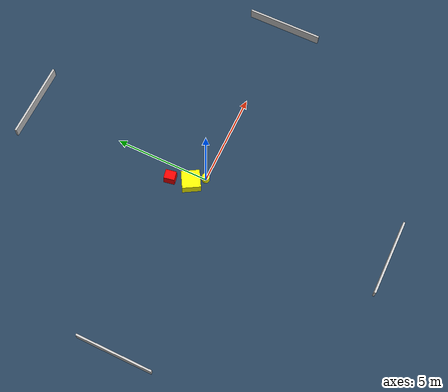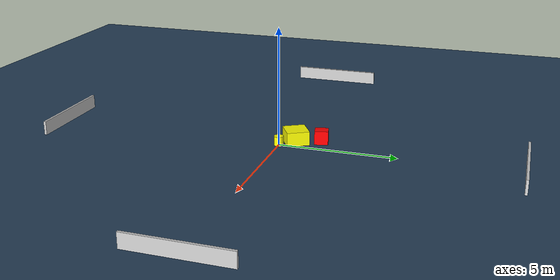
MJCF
<?xml version="1.0" ?>
<mujoco model="generated_environment">
  <option timestep="0.01" integrator="RK4" cone="elliptic"/>
  <default>
    <geom density="1"/>
  </default>
  <asset>
    <texture builtin="gradient" height="3072" name="skybox" rgb1="0.3 0.5 0.7" rgb2="0 0 0" type="skybox" width="512"/>
    <texture builtin="checker" height="300" name="groundplane" rgb1="0.2 0.3 0.4" rgb2="0.1 0.2 0.3" type="2d" width="300"/>
    <material name="groundplane" reflectance="0.2" texrepeat="5 5" texture="groundplane"/>
  </asset>
  <worldbody>
    <light dir="0 0 -1" directional="true" pos="0 0 1.5"/>
    <geom condim="3" friction="0.5 0.005 0.001" material="groundplane" name="floor" pos="0 0 0" size="0 0 0.05" type="plane"/>
    <body name="walls">
      <geom name="wall_1" condim="4" pos="-10.0 0.0 0.3" rgba="0.800000011920929 0.800000011920929 0.800000011920929 1.0" size="0.05 2.0 0.3" type="box"/>
      <geom name="wall_2" condim="4" pos="10.0 0.0 0.3" rgba="0.800000011920929 0.800000011920929 0.800000011920929 1.0" size="0.05 2.0 0.3" type="box"/>
      <geom name="wall_3" condim="4" pos="0.0 -10.0 0.3" rgba="0.800000011920929 0.800000011920929 0.800000011920929 1.0" size="2.0 0.05 0.3" type="box"/>
      <geom name="wall_4" condim="4" pos="0.0 10.0 0.3" rgba="0.800000011920929 0.800000011920929 0.800000011920929 1.0" size="2.0 0.05 0.3" type="box"/>
    </body>
    <body name="robot">
      <joint name="joint_x" type="slide" pos="0 0 0" axis="1 0 0"/>
      <joint name="joint_y" type="slide" pos="0 0 0" axis="0 1 0"/>
      <geom name="robot" type="cylinder" pos="0.0 0.0 0.2" size="0.2 0.2 0.0" mass="5.0" friction="1.0 0.005 0.0001" condim="4" rgba="1.0 1.0 0.0 1.0"/>
    </body>
    <body name="obstacle_1_movable">
      <geom name="obstacle_1_movable" condim="4" pos="-0.5105262207619137 0.5949065561693851 0.3" euler="0 0 30.30301562885597" friction="0.0 0.005 0.001" rgba="1.0 1.0 0.0 1.0" size="0.4713973087336781 0.48010509809389373 0.3" type="box" mass="0.1"/>
      <joint type="free"/>
    </body>
    <body name="obstacle_2_static">
      <geom name="obstacle_2_static" condim="4" pos="-0.7629924922640103 1.6475964705032917 0.3" euler="0 0 11.028731479766902" friction="0.0 0.005 0.001" rgba="1.0 0.0 0.0 1.0" size="0.24270501090169222 0.28544074079589576 0.3" type="box"/>
    </body>
  </worldbody>
  <actuator>
    <motor name="actuator_x" joint="joint_x" gear="1" ctrlrange="-1 1"/>
    <motor name="actuator_y" joint="joint_y" gear="1" ctrlrange="-1 1"/>
  </actuator>
</mujoco>
